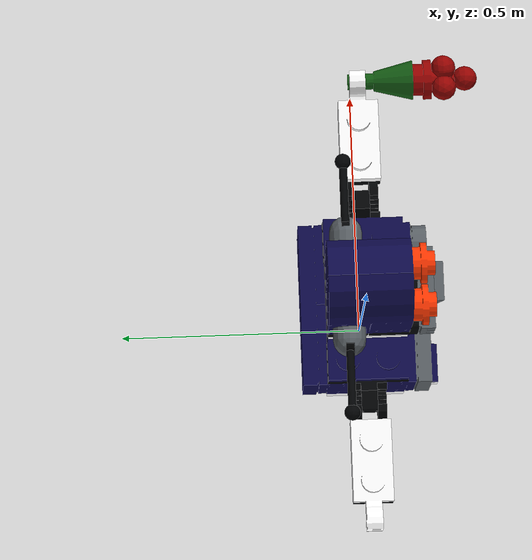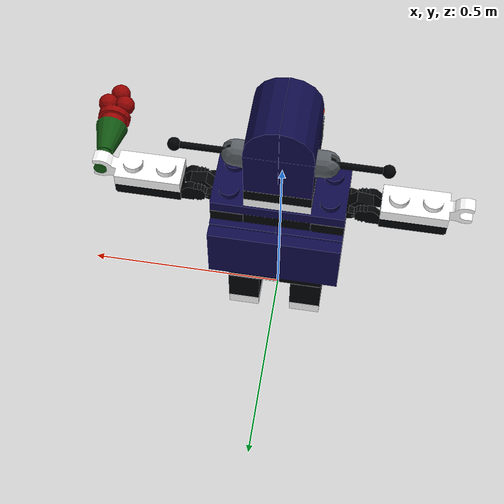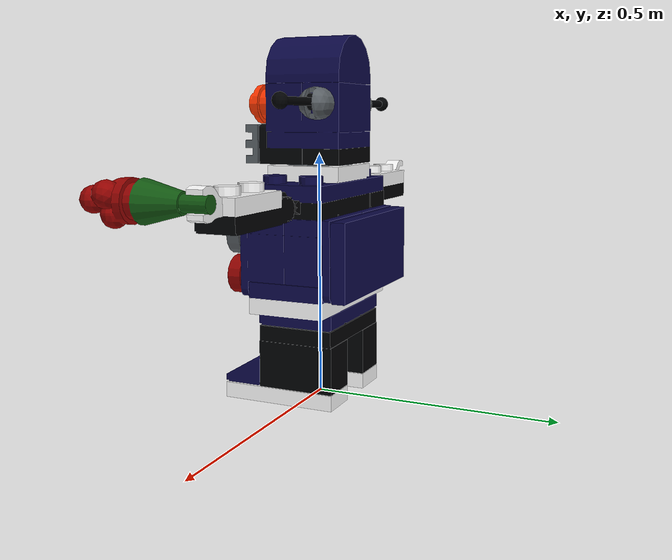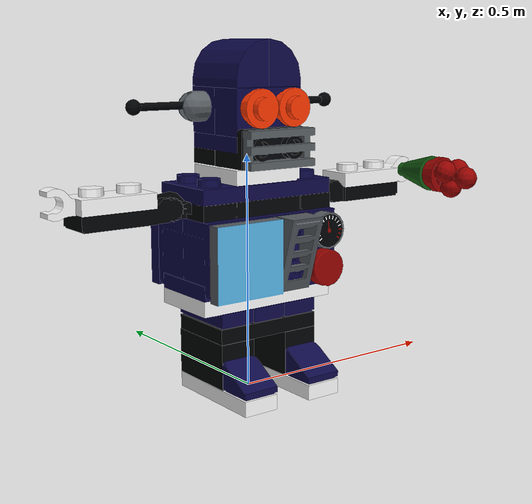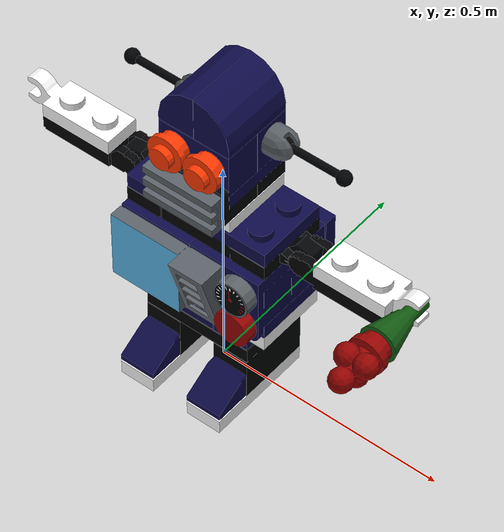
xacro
<robot xmlns:xacro="http://ros.org/wiki/xacro" name="lego_robot">
  <xacro:property name="scale" value="0.1"/>
  <link name="base_link" />
  <joint name="torso_joint" type="fixed">
    <origin xyz="0 0 0" rpy="0 0 ${pi}"/>
    <parent link="base_link"/>
    <child link="torso"/>
  </joint>
  <link name="torso">
    <visual>
      <geometry>
        <mesh filename="package://foxglove_lego_robot/meshes/torso.dae" scale="${scale} ${scale} ${scale}" />
      </geometry>
    </visual>
    <collision>
      <origin xyz="0 ${0.2 * scale} ${2.5 * scale}" rpy="0 0 0"/>
        <geometry>
          <box size="${3.5 * scale} ${3 * scale} ${5 * scale}" />
        </geometry>
    </collision>
  </link>
  <joint name="torso_head_joint" type="revolute">
    <axis xyz="0 0 1" />
    <limit lower="${-pi}" upper="${pi}" effort="0.01" velocity="10.0" />
    <origin xyz="0 0 ${4.5 * scale}" rpy="0 0 0"/>
    <parent link="torso"/>
    <child link="head"/>
  </joint>
  <link name="head">
    <visual>
      <geometry>
        <mesh filename="package://foxglove_lego_robot/meshes/head.dae" scale="${scale} ${scale} ${scale}" />
      </geometry>
    </visual>
    <collision>
      <origin xyz="0 ${0.21 * scale} ${1.4 * scale}" rpy="0 0 0"/>
        <geometry>
          <box size="${2.4 * scale} ${2.2 * scale} ${3 * scale}" />
        </geometry>
    </collision>
  </link>
  <joint name="right_antenna_joint" type="revolute">
    <axis xyz="0 0 1" />
    <limit lower="-1.222" upper="${pi/2}" effort="0.01" velocity="10.0" />
    <origin xyz="${1.1 * scale} ${-0.4 * scale} ${1.55 * scale}" rpy="${pi/2} ${pi/2} 0"/>
    <parent link="head"/>
    <child link="right_antenna"/>
  </joint>
  <link name="right_antenna">
    <visual>
      <geometry>
        <mesh filename="package://foxglove_lego_robot/meshes/antenna.dae" scale="${scale} ${scale} ${scale}" />
      </geometry>
    </visual>
    <collision>
      <origin xyz="0 ${0.75 * scale} 0" rpy="1.57 0 0"/>
      <geometry>
        <cylinder radius="${0.25 * scale}" length="${1.5 * scale}" />
      </geometry>
    </collision>
  </link>
  <joint name="left_antenna_joint" type="revolute">
    <axis xyz="0 0 1" />
    <limit lower="-1.222" upper="${pi/2}" effort="0.01" velocity="10.0" />
    <origin xyz="${-1.1 * scale} ${-0.4 * scale} ${1.55 * scale}" rpy="${-pi/2} ${pi/2} 0"/>
    <parent link="head"/>
    <child link="left_antenna"/>
  </joint>
  <link name="left_antenna">
    <visual>
      <geometry>
        <mesh filename="package://foxglove_lego_robot/meshes/antenna.dae" scale="${scale} ${scale} ${scale}" />
      </geometry>
    </visual>
        <collision>
      <origin xyz="0 ${0.75 * scale} 0" rpy="1.57 0 0"/>
      <geometry>
        <cylinder radius="${0.25 * scale}" length="${1.5 * scale}" />
      </geometry>
    </collision>
  </link>
   <joint name="right_arm_joint" type="revolute">
    <axis xyz="0 0 -1" />
    <limit lower="${-pi/2}" upper="${pi/2}" effort="0.01" velocity="10.0" />
    <origin xyz="${1.98 * scale} 0 ${4.08 * scale}" rpy="${-pi/2} 3.1416 0"/>
    <parent link="torso"/>
    <child link="right_arm"/>
  </joint>
  <link name="right_arm">
    <visual>
      <geometry>
        <mesh filename="package://foxglove_lego_robot/meshes/arm.dae" scale="${scale} ${scale} ${scale}" />
      </geometry>
    </visual>
    <collision>
      <origin xyz="${-1.2 * scale} ${0.2 * scale} 0" rpy="0 0 0"/>
      <geometry>
        <box size="${3 * scale} ${0.9 * scale} ${0.8 * scale}" />
      </geometry>
    </collision>
  </link>
  <joint name="left_arm_joint" type="revolute">
    <axis xyz="0 0 -1" />
    <limit lower="${-pi/2}" upper="${pi/2}" effort="0.01" velocity="10.0" />
    <origin xyz="${-1.98 * scale} 0 ${4.08 * scale}" rpy="${pi/2} 0 0"/>
    <parent link="torso"/>
    <child link="left_arm"/>
  </joint>
  <link name="left_arm">
    <visual>
      <geometry>
        <mesh filename="package://foxglove_lego_robot/meshes/arm.dae" scale="${scale} ${scale} ${scale}" />
      </geometry>
    </visual>
      <collision>
      <origin xyz="${-1.2 * scale} ${0.2 * scale} 0" rpy="0 0 0"/>
      <geometry>
        <box size="${3 * scale} ${0.9 * scale} ${0.8 * scale}" />
      </geometry>
    </collision>
  </link>
  <joint name="right_hand_joint" type="fixed">
    <origin xyz="${-2.38 * scale} ${0.3 * scale} 0" rpy="0 0 0"/>
    <parent link="right_arm"/>
    <child link="right_hand"/>
  </joint>
  <link name="right_hand" />
  <joint name="left_hand_joint" type="fixed">
    <origin xyz="${-2.38 * scale} ${0.3 * scale} 0" rpy="3.1416 0 0"/>
    <parent link="left_arm"/>
    <child link="left_hand"/>
  </joint>
  <link name="left_hand" />
  <joint name="flowers_joint" type="fixed">
    <origin xyz="0 0 ${-0.2 * scale}" rpy="0 0 0"/>
    <parent link="left_hand"/>
    <child link="flowers"/>
  </joint>
  <link name="flowers">
    <visual>
      <geometry>
        <mesh filename="package://foxglove_lego_robot/meshes/flowers.dae" scale="${scale} ${scale} ${scale}" />
      </geometry>
    </visual>
      <collision>
      <origin xyz="0 0 ${1.25 * scale}" rpy="0 0 0"/>
      <geometry>
        <cylinder radius="${0.5 * scale}" length="${2.75 * scale}" />
      </geometry>
    </collision>
  </link>
</robot>
